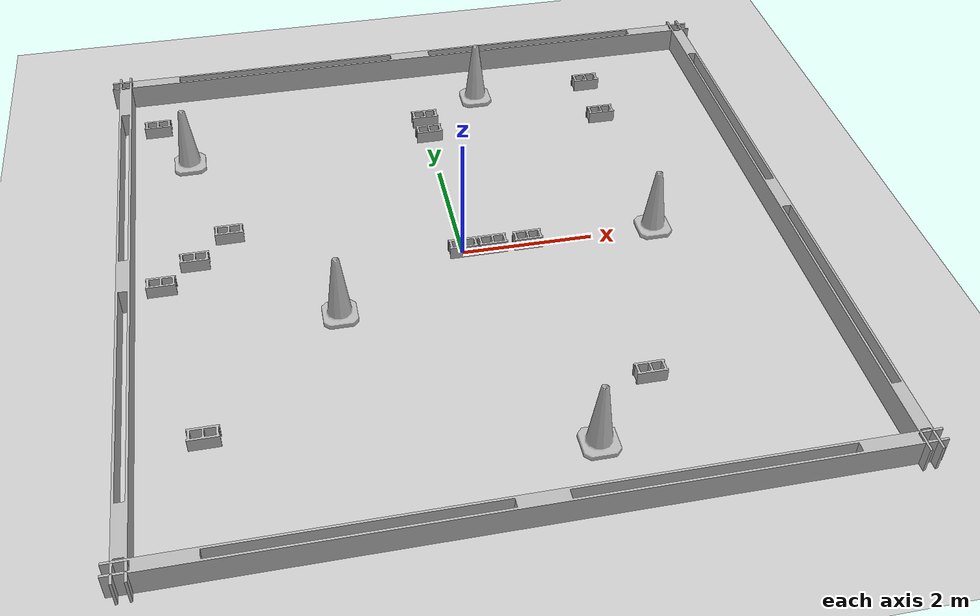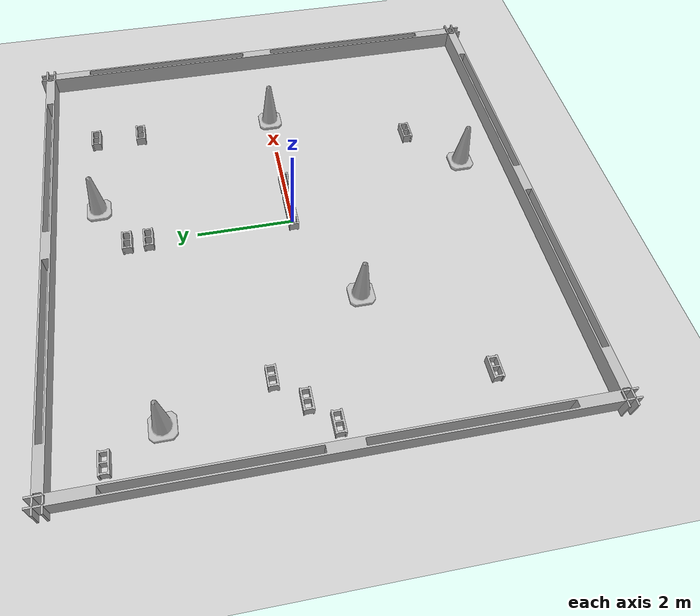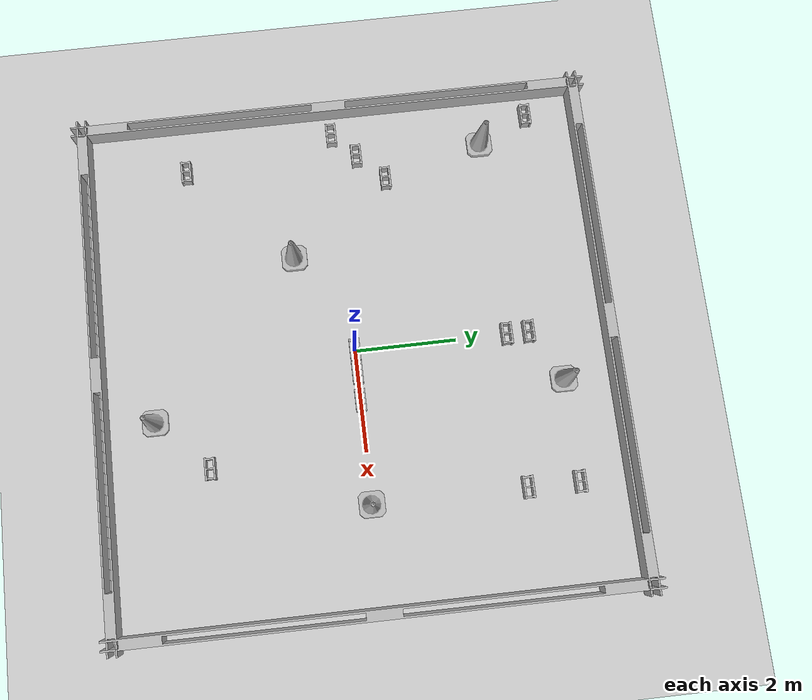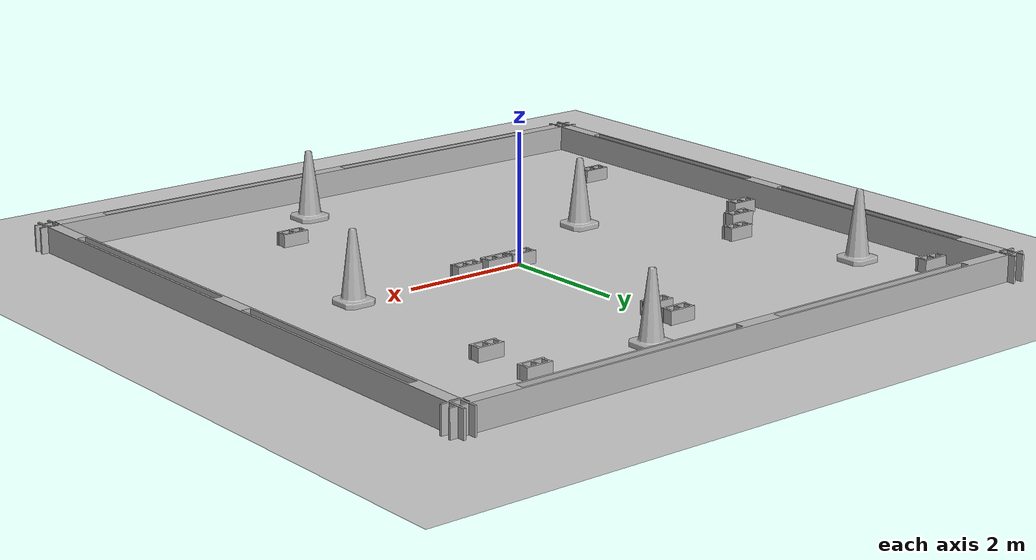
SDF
<sdf version="1.4">
 <world name="default">
  <light name="sun" type="directional">
   <pose>0 0 10 0 -0 0</pose>
   <diffuse>0.8 0.8 0.8 1</diffuse>
   <specular>0.2 0.2 0.2 1</specular>
   <attenuation>
    <range>1000</range>
    <constant>0.9</constant>
    <linear>0.01</linear>
    <quadratic>0.001</quadratic>
   </attenuation>
   <direction>-0.5 0.1 -0.9</direction>
  </light>
  <model name="ground_plane">
   <static>1</static>
   <link name="link">
    <collision name="collision">
     <geometry><plane><normal>0 0 1</normal><size>100 100</size></plane></geometry>
     <surface><friction><ode><mu>100</mu><mu2>50</mu2></ode></friction></surface>
    </collision>
    <visual name="visual">
     <cast_shadows>0</cast_shadows>
     <geometry><plane><normal>0 0 1</normal><size>100 100</size></plane></geometry>
     <material>
      <script><uri>file://media/materials/scripts/gazebo.material</uri><name>Gazebo/Grey</name></script>
     </material>
    </visual>
    <velocity_decay><linear>0</linear><angular>0</angular></velocity_decay>
   </link>
  </model>
  <physics type="ode">
   <max_step_size>0.001</max_step_size>
   <real_time_factor>1</real_time_factor>
   <real_time_update_rate>1000</real_time_update_rate>
   <gravity>0 0 -9.8</gravity>
  </physics>
  <scene><ambient>0.4 0.4 0.4 1</ambient><background>0.7 0.7 0.7 1</background><shadows>1</shadows></scene>
  <model name="cinder_block">
   <link name="link">
    <inertial>
     <pose>0 0 0.1016 0 -0 0</pose>
     <mass>5</mass>
     <inertia>
      <ixx>0.028705</ixx>
      <ixy>0</ixy>
      <iyy>0.073708</iyy>
      <ixz>0</ixz>
      <iyz>0</iyz>
      <izz>0.06908</izz>
     </inertia>
    </inertial>
    <visual name="visual">
     <geometry><mesh><uri>model://cinder_block/meshes/cinder_block.dae</uri></mesh></geometry>
    </visual>
    <collision name="left">
     <pose>0 -0.08465 0.1016 0 -0 0</pose>
     <geometry><box><size>0.43495 0.0339 0.2032</size></box></geometry>
     <surface><contact><ode><max_vel>0.1</max_vel><min_depth>0.001</min_depth></ode></contact></surface>
    </collision>
    <collision name="right">
     <pose>0 0.08465 0.1016 0 -0 0</pose>
     <geometry><box><size>0.43495 0.0339 0.2032</size></box></geometry>
     <surface><contact><ode><max_vel>0.1</max_vel><min_depth>0.001</min_depth></ode></contact></surface>
    </collision>
    <collision name="front">
     <pose>0.18625 0 0.1016 0 -0 0</pose>
     <geometry><box><size>0.0339 0.1354 0.203</size></box></geometry>
     <surface><contact><ode><max_vel>0.1</max_vel><min_depth>0.001</min_depth></ode></contact></surface>
    </collision>
    <collision name="middle">
     <pose>0 0 0.1016 0 -0 0</pose>
     <geometry><box><size>0.0339 0.1354 0.203</size></box></geometry>
     <surface><contact><ode><max_vel>0.1</max_vel><min_depth>0.001</min_depth></ode></contact></surface>
    </collision>
    <collision name="back">
     <pose>-0.18625 0 0.1016 0 -0 0</pose>
     <geometry><box><size>0.0339 0.1354 0.203</size></box></geometry>
     <surface><contact><ode><max_vel>0.1</max_vel><min_depth>0.001</min_depth></ode></contact></surface>
    </collision>
    <velocity_decay><linear>0</linear><angular>0</angular></velocity_decay>
   </link>
   <pose>0 -0 -1.2e-05 3e-06 -1e-06 4.03897e-28</pose>
   <static>0</static>
  </model>
  <model name="wall_0">
   <pose>0 -5 0 0 -0 0</pose>
   <static>1</static>
   <link name="link">
    <collision name="collision"><geometry><box><size>10 0.2 0.3</size></box></geometry></collision>
    <visual name="visual">
     <geometry><mesh><uri>model://cinder_block/meshes/cinder_block.dae</uri><scale>24 1 2</scale></mesh></geometry>
    </visual>
    <velocity_decay><linear>0</linear><angular>0</angular></velocity_decay>
   </link>
  </model>
  <model name="wall_1">
   <pose>0 5 0 0 -0 0</pose>
   <static>1</static>
   <link name="link">
    <collision name="collision"><geometry><box><size>10 0.2 0.3</size></box></geometry></collision>
    <visual name="visual">
     <geometry><mesh><uri>model://cinder_block/meshes/cinder_block.dae</uri><scale>24 1 2</scale></mesh></geometry>
    </visual>
    <velocity_decay><linear>0</linear><angular>0</angular></velocity_decay>
   </link>
  </model>
  <model name="wall_2">
   <pose>-5 0 0 0 -0 1.5708</pose>
   <static>1</static>
   <link name="link">
    <collision name="collision"><geometry><box><size>10 0.2 0.3</size></box></geometry></collision>
    <visual name="visual">
     <geometry><mesh><uri>model://cinder_block/meshes/cinder_block.dae</uri><scale>24 1 2</scale></mesh></geometry>
    </visual>
    <velocity_decay><linear>0</linear><angular>0</angular></velocity_decay>
   </link>
  </model>
  <model name="wall_3">
   <pose>5 0 0 0 -0 1.5708</pose>
   <static>1</static>
   <link name="link">
    <collision name="collision"><geometry><box><size>10 0.2 0.3</size></box></geometry></collision>
    <visual name="visual">
     <geometry><mesh><uri>model://cinder_block/meshes/cinder_block.dae</uri><scale>24 1 2</scale></mesh></geometry>
    </visual>
    <velocity_decay><linear>0</linear><angular>0</angular></velocity_decay>
   </link>
  </model>
  <model name="cinder_block_0">
   <link name="link">
    <inertial>
     <pose>0 0 0.1016 0 -0 0</pose>
     <mass>5</mass>
     <inertia>
      <ixx>0.028705</ixx>
      <ixy>0</ixy>
      <iyy>0.073708</iyy>
      <ixz>0</ixz>
      <iyz>0</iyz>
      <izz>0.06908</izz>
     </inertia>
    </inertial>
    <visual name="visual">
     <geometry><mesh><uri>model://cinder_block/meshes/cinder_block.dae</uri></mesh></geometry>
    </visual>
    <collision name="left">
     <pose>0 -0.08465 0.1016 0 -0 0</pose>
     <geometry><box><size>0.43495 0.0339 0.2032</size></box></geometry>
     <surface><contact><ode><max_vel>0.1</max_vel><min_depth>0.001</min_depth></ode></contact></surface>
    </collision>
    <collision name="right">
     <pose>0 0.08465 0.1016 0 -0 0</pose>
     <geometry><box><size>0.43495 0.0339 0.2032</size></box></geometry>
     <surface><contact><ode><max_vel>0.1</max_vel><min_depth>0.001</min_depth></ode></contact></surface>
    </collision>
    <collision name="front">
     <pose>0.18625 0 0.1016 0 -0 0</pose>
     <geometry><box><size>0.0339 0.1354 0.203</size></box></geometry>
     <surface><contact><ode><max_vel>0.1</max_vel><min_depth>0.001</min_depth></ode></contact></surface>
    </collision>
    <collision name="middle">
     <pose>0 0 0.1016 0 -0 0</pose>
     <geometry><box><size>0.0339 0.1354 0.203</size></box></geometry>
     <surface><contact><ode><max_vel>0.1</max_vel><min_depth>0.001</min_depth></ode></contact></surface>
    </collision>
    <collision name="back">
     <pose>-0.18625 0 0.1016 0 -0 0</pose>
     <geometry><box><size>0.0339 0.1354 0.203</size></box></geometry>
     <surface><contact><ode><max_vel>0.1</max_vel><min_depth>0.001</min_depth></ode></contact></surface>
    </collision>
    <velocity_decay><linear>0</linear><angular>0</angular></velocity_decay>
   </link>
   <pose>3 3 -6e-06 -1e-06 2.8e-05 0</pose>
   <static>0</static>
  </model>
  <model name="cinder_block_1">
   <link name="link">
    <inertial>
     <pose>0 0 0.1016 0 -0 0</pose>
     <mass>5</mass>
     <inertia>
      <ixx>0.028705</ixx>
      <ixy>0</ixy>
      <iyy>0.073708</iyy>
      <ixz>0</ixz>
      <iyz>0</iyz>
      <izz>0.06908</izz>
     </inertia>
    </inertial>
    <visual name="visual">
     <geometry><mesh><uri>model://cinder_block/meshes/cinder_block.dae</uri></mesh></geometry>
    </visual>
    <collision name="left">
     <pose>0 -0.08465 0.1016 0 -0 0</pose>
     <geometry><box><size>0.43495 0.0339 0.2032</size></box></geometry>
     <surface><contact><ode><max_vel>0.1</max_vel><min_depth>0.001</min_depth></ode></contact></surface>
    </collision>
    <collision name="right">
     <pose>0 0.08465 0.1016 0 -0 0</pose>
     <geometry><box><size>0.43495 0.0339 0.2032</size></box></geometry>
     <surface><contact><ode><max_vel>0.1</max_vel><min_depth>0.001</min_depth></ode></contact></surface>
    </collision>
    <collision name="front">
     <pose>0.18625 0 0.1016 0 -0 0</pose>
     <geometry><box><size>0.0339 0.1354 0.203</size></box></geometry>
     <surface><contact><ode><max_vel>0.1</max_vel><min_depth>0.001</min_depth></ode></contact></surface>
    </collision>
    <collision name="middle">
     <pose>0 0 0.1016 0 -0 0</pose>
     <geometry><box><size>0.0339 0.1354 0.203</size></box></geometry>
     <surface><contact><ode><max_vel>0.1</max_vel><min_depth>0.001</min_depth></ode></contact></surface>
    </collision>
    <collision name="back">
     <pose>-0.18625 0 0.1016 0 -0 0</pose>
     <geometry><box><size>0.0339 0.1354 0.203</size></box></geometry>
     <surface><contact><ode><max_vel>0.1</max_vel><min_depth>0.001</min_depth></ode></contact></surface>
    </collision>
    <velocity_decay><linear>0</linear><angular>0</angular></velocity_decay>
   </link>
   <pose>3 4 -6e-06 -1e-06 2.8e-05 0</pose>
   <static>0</static>
  </model>
  <model name="cinder_block_2">
   <link name="link">
    <inertial>
     <pose>0 0 0.1016 0 -0 0</pose>
     <mass>5</mass>
     <inertia>
      <ixx>0.028705</ixx>
      <ixy>0</ixy>
      <iyy>0.073708</iyy>
      <ixz>0</ixz>
      <iyz>0</iyz>
      <izz>0.06908</izz>
     </inertia>
    </inertial>
    <visual name="visual">
     <geometry><mesh><uri>model://cinder_block/meshes/cinder_block.dae</uri></mesh></geometry>
    </visual>
    <collision name="left">
     <pose>0 -0.08465 0.1016 0 -0 0</pose>
     <geometry><box><size>0.43495 0.0339 0.2032</size></box></geometry>
     <surface><contact><ode><max_vel>0.1</max_vel><min_depth>0.001</min_depth></ode></contact></surface>
    </collision>
    <collision name="right">
     <pose>0 0.08465 0.1016 0 -0 0</pose>
     <geometry><box><size>0.43495 0.0339 0.2032</size></box></geometry>
     <surface><contact><ode><max_vel>0.1</max_vel><min_depth>0.001</min_depth></ode></contact></surface>
    </collision>
    <collision name="front">
     <pose>0.18625 0 0.1016 0 -0 0</pose>
     <geometry><box><size>0.0339 0.1354 0.203</size></box></geometry>
     <surface><contact><ode><max_vel>0.1</max_vel><min_depth>0.001</min_depth></ode></contact></surface>
    </collision>
    <collision name="middle">
     <pose>0 0 0.1016 0 -0 0</pose>
     <geometry><box><size>0.0339 0.1354 0.203</size></box></geometry>
     <surface><contact><ode><max_vel>0.1</max_vel><min_depth>0.001</min_depth></ode></contact></surface>
    </collision>
    <collision name="back">
     <pose>-0.18625 0 0.1016 0 -0 0</pose>
     <geometry><box><size>0.0339 0.1354 0.203</size></box></geometry>
     <surface><contact><ode><max_vel>0.1</max_vel><min_depth>0.001</min_depth></ode></contact></surface>
    </collision>
    <velocity_decay><linear>0</linear><angular>0</angular></velocity_decay>
   </link>
   <pose>2 -3 -6e-06 -1e-06 2.8e-05 0</pose>
   <static>0</static>
  </model>
  <model name="cinder_block_3">
   <link name="link">
    <inertial>
     <pose>0 0 0.1016 0 -0 0</pose>
     <mass>5</mass>
     <inertia>
      <ixx>0.028705</ixx>
      <ixy>0</ixy>
      <iyy>0.073708</iyy>
      <ixz>0</ixz>
      <iyz>0</iyz>
      <izz>0.06908</izz>
     </inertia>
    </inertial>
    <visual name="visual">
     <geometry><mesh><uri>model://cinder_block/meshes/cinder_block.dae</uri></mesh></geometry>
    </visual>
    <collision name="left">
     <pose>0 -0.08465 0.1016 0 -0 0</pose>
     <geometry><box><size>0.43495 0.0339 0.2032</size></box></geometry>
     <surface><contact><ode><max_vel>0.1</max_vel><min_depth>0.001</min_depth></ode></contact></surface>
    </collision>
    <collision name="right">
     <pose>0 0.08465 0.1016 0 -0 0</pose>
     <geometry><box><size>0.43495 0.0339 0.2032</size></box></geometry>
     <surface><contact><ode><max_vel>0.1</max_vel><min_depth>0.001</min_depth></ode></contact></surface>
    </collision>
    <collision name="front">
     <pose>0.18625 0 0.1016 0 -0 0</pose>
     <geometry><box><size>0.0339 0.1354 0.203</size></box></geometry>
     <surface><contact><ode><max_vel>0.1</max_vel><min_depth>0.001</min_depth></ode></contact></surface>
    </collision>
    <collision name="middle">
     <pose>0 0 0.1016 0 -0 0</pose>
     <geometry><box><size>0.0339 0.1354 0.203</size></box></geometry>
     <surface><contact><ode><max_vel>0.1</max_vel><min_depth>0.001</min_depth></ode></contact></surface>
    </collision>
    <collision name="back">
     <pose>-0.18625 0 0.1016 0 -0 0</pose>
     <geometry><box><size>0.0339 0.1354 0.203</size></box></geometry>
     <surface><contact><ode><max_vel>0.1</max_vel><min_depth>0.001</min_depth></ode></contact></surface>
    </collision>
    <velocity_decay><linear>0</linear><angular>0</angular></velocity_decay>
   </link>
   <pose>-4.49454 4 -6e-06 -1e-06 2.8e-05 0</pose>
   <static>0</static>
  </model>
  <model name="Construction Cone">
   <link name="link">
    <collision name="collision">
     <geometry>
      <mesh><scale>10 10 10</scale><uri>model://construction_cone/meshes/construction_cone.dae</uri></mesh>
     </geometry>
    </collision>
    <visual name="visual">
     <geometry>
      <mesh><scale>10 10 10</scale><uri>model://construction_cone/meshes/construction_cone.dae</uri></mesh>
     </geometry>
    </visual>
    <velocity_decay><linear>0</linear><angular>0</angular></velocity_decay>
    <inertial>
     <inertia><ixx>1</ixx><ixy>0</ixy><ixz>0</ixz><iyy>1</iyy><iyz>0</iyz><izz>1</izz></inertia>
     <mass>1</mass>
    </inertial>
   </link>
   <pose>-4 3 -8e-06 0 -4e-06 0</pose>
   <static>0</static>
  </model>
  <model name="Construction Cone_0">
   <link name="link">
    <collision name="collision">
     <geometry>
      <mesh><scale>10 10 10</scale><uri>model://construction_cone/meshes/construction_cone.dae</uri></mesh>
     </geometry>
    </collision>
    <visual name="visual">
     <geometry>
      <mesh><scale>10 10 10</scale><uri>model://construction_cone/meshes/construction_cone.dae</uri></mesh>
     </geometry>
    </visual>
    <velocity_decay><linear>0</linear><angular>0</angular></velocity_decay>
    <inertial>
     <inertia><ixx>1</ixx><ixy>0</ixy><ixz>0</ixz><iyy>1</iyy><iyz>0</iyz><izz>1</izz></inertia>
     <mass>1</mass>
    </inertial>
   </link>
   <pose>3 -0 -9e-06 2e-06 -0 0</pose>
   <static>0</static>
  </model>
  <model name="Construction Cone_1">
   <link name="link">
    <collision name="collision">
     <geometry>
      <mesh><scale>10 10 10</scale><uri>model://construction_cone/meshes/construction_cone.dae</uri></mesh>
     </geometry>
    </collision>
    <visual name="visual">
     <geometry>
      <mesh><scale>10 10 10</scale><uri>model://construction_cone/meshes/construction_cone.dae</uri></mesh>
     </geometry>
    </visual>
    <velocity_decay><linear>0</linear><angular>0</angular></velocity_decay>
    <inertial>
     <inertia><ixx>1</ixx><ixy>0</ixy><ixz>0</ixz><iyy>1</iyy><iyz>0</iyz><izz>1</izz></inertia>
     <mass>1</mass>
    </inertial>
   </link>
   <pose>1 4 0 0 1e-06 0</pose>
   <static>0</static>
  </model>
  <model name="Construction Cone_2">
   <link name="link">
    <collision name="collision">
     <geometry>
      <mesh><scale>10 10 10</scale><uri>model://construction_cone/meshes/construction_cone.dae</uri></mesh>
     </geometry>
    </collision>
    <visual name="visual">
     <geometry>
      <mesh><scale>10 10 10</scale><uri>model://construction_cone/meshes/construction_cone.dae</uri></mesh>
     </geometry>
    </visual>
    <velocity_decay><linear>0</linear><angular>0</angular></velocity_decay>
    <inertial>
     <inertia><ixx>1</ixx><ixy>0</ixy><ixz>0</ixz><iyy>1</iyy><iyz>0</iyz><izz>1</izz></inertia>
     <mass>1</mass>
    </inertial>
   </link>
   <pose>-2 -1 0 1e-06 -0 0</pose>
   <static>0</static>
  </model>
  <model name="Construction Cone_3">
   <link name="link">
    <collision name="collision">
     <geometry>
      <mesh><scale>10 10 10</scale><uri>model://construction_cone/meshes/construction_cone.dae</uri></mesh>
     </geometry>
    </collision>
    <visual name="visual">
     <geometry>
      <mesh><scale>10 10 10</scale><uri>model://construction_cone/meshes/construction_cone.dae</uri></mesh>
     </geometry>
    </visual>
    <velocity_decay><linear>0</linear><angular>0</angular></velocity_decay>
    <inertial>
     <inertia><ixx>1</ixx><ixy>0</ixy><ixz>0</ixz><iyy>1</iyy><iyz>0</iyz><izz>1</izz></inertia>
     <mass>1</mass>
    </inertial>
   </link>
   <pose>1 -4 -0 -0 -0 -0</pose>
   <static>0</static>
  </model>
  <model name="cinder_block_4">
   <link name="link">
    <inertial>
     <pose>0 0 0.1016 0 -0 0</pose>
     <mass>5</mass>
     <inertia>
      <ixx>0.028705</ixx>
      <ixy>0</ixy>
      <iyy>0.073708</iyy>
      <ixz>0</ixz>
      <iyz>0</iyz>
      <izz>0.06908</izz>
     </inertia>
    </inertial>
    <visual name="visual">
     <geometry><mesh><uri>model://cinder_block/meshes/cinder_block.dae</uri></mesh></geometry>
    </visual>
    <collision name="left">
     <pose>0 -0.08465 0.1016 0 -0 0</pose>
     <geometry><box><size>0.43495 0.0339 0.2032</size></box></geometry>
     <surface><contact><ode><max_vel>0.1</max_vel><min_depth>0.001</min_depth></ode></contact></surface>
    </collision>
    <collision name="right">
     <pose>0 0.08465 0.1016 0 -0 0</pose>
     <geometry><box><size>0.43495 0.0339 0.2032</size></box></geometry>
     <surface><contact><ode><max_vel>0.1</max_vel><min_depth>0.001</min_depth></ode></contact></surface>
    </collision>
    <collision name="front">
     <pose>0.18625 0 0.1016 0 -0 0</pose>
     <geometry><box><size>0.0339 0.1354 0.203</size></box></geometry>
     <surface><contact><ode><max_vel>0.1</max_vel><min_depth>0.001</min_depth></ode></contact></surface>
    </collision>
    <collision name="middle">
     <pose>0 0 0.1016 0 -0 0</pose>
     <geometry><box><size>0.0339 0.1354 0.203</size></box></geometry>
     <surface><contact><ode><max_vel>0.1</max_vel><min_depth>0.001</min_depth></ode></contact></surface>
    </collision>
    <collision name="back">
     <pose>-0.18625 0 0.1016 0 -0 0</pose>
     <geometry><box><size>0.0339 0.1354 0.203</size></box></geometry>
     <surface><contact><ode><max_vel>0.1</max_vel><min_depth>0.001</min_depth></ode></contact></surface>
    </collision>
    <velocity_decay><linear>0</linear><angular>0</angular></velocity_decay>
   </link>
   <pose>0.453647 0 -6e-06 -1e-06 2.8e-05 0</pose>
   <static>0</static>
  </model>
  <model name="cinder_block_5">
   <link name="link">
    <inertial>
     <pose>0 0 0.1016 0 -0 0</pose>
     <mass>5</mass>
     <inertia>
      <ixx>0.028705</ixx>
      <ixy>0</ixy>
      <iyy>0.073708</iyy>
      <ixz>0</ixz>
      <iyz>0</iyz>
      <izz>0.06908</izz>
     </inertia>
    </inertial>
    <visual name="visual">
     <geometry><mesh><uri>model://cinder_block/meshes/cinder_block.dae</uri></mesh></geometry>
    </visual>
    <collision name="left">
     <pose>0 -0.08465 0.1016 0 -0 0</pose>
     <geometry><box><size>0.43495 0.0339 0.2032</size></box></geometry>
     <surface><contact><ode><max_vel>0.1</max_vel><min_depth>0.001</min_depth></ode></contact></surface>
    </collision>
    <collision name="right">
     <pose>0 0.08465 0.1016 0 -0 0</pose>
     <geometry><box><size>0.43495 0.0339 0.2032</size></box></geometry>
     <surface><contact><ode><max_vel>0.1</max_vel><min_depth>0.001</min_depth></ode></contact></surface>
    </collision>
    <collision name="front">
     <pose>0.18625 0 0.1016 0 -0 0</pose>
     <geometry><box><size>0.0339 0.1354 0.203</size></box></geometry>
     <surface><contact><ode><max_vel>0.1</max_vel><min_depth>0.001</min_depth></ode></contact></surface>
    </collision>
    <collision name="middle">
     <pose>0 0 0.1016 0 -0 0</pose>
     <geometry><box><size>0.0339 0.1354 0.203</size></box></geometry>
     <surface><contact><ode><max_vel>0.1</max_vel><min_depth>0.001</min_depth></ode></contact></surface>
    </collision>
    <collision name="back">
     <pose>-0.18625 0 0.1016 0 -0 0</pose>
     <geometry><box><size>0.0339 0.1354 0.203</size></box></geometry>
     <surface><contact><ode><max_vel>0.1</max_vel><min_depth>0.001</min_depth></ode></contact></surface>
    </collision>
    <velocity_decay><linear>0</linear><angular>0</angular></velocity_decay>
   </link>
   <pose>1 0 -6e-06 -1e-06 2.8e-05 0</pose>
   <static>0</static>
  </model>
  <model name="cinder_block_6">
   <link name="link">
    <inertial>
     <pose>0 0 0.1016 0 -0 0</pose>
     <mass>5</mass>
     <inertia>
      <ixx>0.028705</ixx>
      <ixy>0</ixy>
      <iyy>0.073708</iyy>
      <ixz>0</ixz>
      <iyz>0</iyz>
      <izz>0.06908</izz>
     </inertia>
    </inertial>
    <visual name="visual">
     <geometry><mesh><uri>model://cinder_block/meshes/cinder_block.dae</uri></mesh></geometry>
    </visual>
    <collision name="left">
     <pose>0 -0.08465 0.1016 0 -0 0</pose>
     <geometry><box><size>0.43495 0.0339 0.2032</size></box></geometry>
     <surface><contact><ode><max_vel>0.1</max_vel><min_depth>0.001</min_depth></ode></contact></surface>
    </collision>
    <collision name="right">
     <pose>0 0.08465 0.1016 0 -0 0</pose>
     <geometry><box><size>0.43495 0.0339 0.2032</size></box></geometry>
     <surface><contact><ode><max_vel>0.1</max_vel><min_depth>0.001</min_depth></ode></contact></surface>
    </collision>
    <collision name="front">
     <pose>0.18625 0 0.1016 0 -0 0</pose>
     <geometry><box><size>0.0339 0.1354 0.203</size></box></geometry>
     <surface><contact><ode><max_vel>0.1</max_vel><min_depth>0.001</min_depth></ode></contact></surface>
    </collision>
    <collision name="middle">
     <pose>0 0 0.1016 0 -0 0</pose>
     <geometry><box><size>0.0339 0.1354 0.203</size></box></geometry>
     <surface><contact><ode><max_vel>0.1</max_vel><min_depth>0.001</min_depth></ode></contact></surface>
    </collision>
    <collision name="back">
     <pose>-0.18625 0 0.1016 0 -0 0</pose>
     <geometry><box><size>0.0339 0.1354 0.203</size></box></geometry>
     <surface><contact><ode><max_vel>0.1</max_vel><min_depth>0.001</min_depth></ode></contact></surface>
    </collision>
    <velocity_decay><linear>0</linear><angular>0</angular></velocity_decay>
   </link>
   <pose>-0 3 -6e-06 -1e-06 2.8e-05 0</pose>
   <static>0</static>
  </model>
  <model name="cinder_block_7">
   <link name="link">
    <inertial>
     <pose>0 0 0.1016 0 -0 0</pose>
     <mass>5</mass>
     <inertia>
      <ixx>0.028705</ixx>
      <ixy>0</ixy>
      <iyy>0.073708</iyy>
      <ixz>0</ixz>
      <iyz>0</iyz>
      <izz>0.06908</izz>
     </inertia>
    </inertial>
    <visual name="visual">
     <geometry><mesh><uri>model://cinder_block/meshes/cinder_block.dae</uri></mesh></geometry>
    </visual>
    <collision name="left">
     <pose>0 -0.08465 0.1016 0 -0 0</pose>
     <geometry><box><size>0.43495 0.0339 0.2032</size></box></geometry>
     <surface><contact><ode><max_vel>0.1</max_vel><min_depth>0.001</min_depth></ode></contact></surface>
    </collision>
    <collision name="right">
     <pose>0 0.08465 0.1016 0 -0 0</pose>
     <geometry><box><size>0.43495 0.0339 0.2032</size></box></geometry>
     <surface><contact><ode><max_vel>0.1</max_vel><min_depth>0.001</min_depth></ode></contact></surface>
    </collision>
    <collision name="front">
     <pose>0.18625 0 0.1016 0 -0 0</pose>
     <geometry><box><size>0.0339 0.1354 0.203</size></box></geometry>
     <surface><contact><ode><max_vel>0.1</max_vel><min_depth>0.001</min_depth></ode></contact></surface>
    </collision>
    <collision name="middle">
     <pose>0 0 0.1016 0 -0 0</pose>
     <geometry><box><size>0.0339 0.1354 0.203</size></box></geometry>
     <surface><contact><ode><max_vel>0.1</max_vel><min_depth>0.001</min_depth></ode></contact></surface>
    </collision>
    <collision name="back">
     <pose>-0.18625 0 0.1016 0 -0 0</pose>
     <geometry><box><size>0.0339 0.1354 0.203</size></box></geometry>
     <surface><contact><ode><max_vel>0.1</max_vel><min_depth>0.001</min_depth></ode></contact></surface>
    </collision>
    <velocity_decay><linear>0</linear><angular>0</angular></velocity_decay>
   </link>
   <pose>-0 3.43524 -6e-06 -1e-06 2.8e-05 0</pose>
   <static>0</static>
  </model>
  <model name="cinder_block_8">
   <link name="link">
    <inertial>
     <pose>0 0 0.1016 0 -0 0</pose>
     <mass>5</mass>
     <inertia>
      <ixx>0.028705</ixx>
      <ixy>0</ixy>
      <iyy>0.073708</iyy>
      <ixz>0</ixz>
      <iyz>0</iyz>
      <izz>0.06908</izz>
     </inertia>
    </inertial>
    <visual name="visual">
     <geometry><mesh><uri>model://cinder_block/meshes/cinder_block.dae</uri></mesh></geometry>
    </visual>
    <collision name="left">
     <pose>0 -0.08465 0.1016 0 -0 0</pose>
     <geometry><box><size>0.43495 0.0339 0.2032</size></box></geometry>
     <surface><contact><ode><max_vel>0.1</max_vel><min_depth>0.001</min_depth></ode></contact></surface>
    </collision>
    <collision name="right">
     <pose>0 0.08465 0.1016 0 -0 0</pose>
     <geometry><box><size>0.43495 0.0339 0.2032</size></box></geometry>
     <surface><contact><ode><max_vel>0.1</max_vel><min_depth>0.001</min_depth></ode></contact></surface>
    </collision>
    <collision name="front">
     <pose>0.18625 0 0.1016 0 -0 0</pose>
     <geometry><box><size>0.0339 0.1354 0.203</size></box></geometry>
     <surface><contact><ode><max_vel>0.1</max_vel><min_depth>0.001</min_depth></ode></contact></surface>
    </collision>
    <collision name="middle">
     <pose>0 0 0.1016 0 -0 0</pose>
     <geometry><box><size>0.0339 0.1354 0.203</size></box></geometry>
     <surface><contact><ode><max_vel>0.1</max_vel><min_depth>0.001</min_depth></ode></contact></surface>
    </collision>
    <collision name="back">
     <pose>-0.18625 0 0.1016 0 -0 0</pose>
     <geometry><box><size>0.0339 0.1354 0.203</size></box></geometry>
     <surface><contact><ode><max_vel>0.1</max_vel><min_depth>0.001</min_depth></ode></contact></surface>
    </collision>
    <velocity_decay><linear>0</linear><angular>0</angular></velocity_decay>
   </link>
   <pose>-4.49907 0 -6e-06 -1e-06 2.8e-05 0</pose>
   <static>0</static>
  </model>
  <model name="cinder_block_9">
   <link name="link">
    <inertial>
     <pose>0 0 0.1016 0 -0 0</pose>
     <mass>5</mass>
     <inertia>
      <ixx>0.028705</ixx>
      <ixy>0</ixy>
      <iyy>0.073708</iyy>
      <ixz>0</ixz>
      <iyz>0</iyz>
      <izz>0.06908</izz>
     </inertia>
    </inertial>
    <visual name="visual">
     <geometry><mesh><uri>model://cinder_block/meshes/cinder_block.dae</uri></mesh></geometry>
    </visual>
    <collision name="left">
     <pose>0 -0.08465 0.1016 0 -0 0</pose>
     <geometry><box><size>0.43495 0.0339 0.2032</size></box></geometry>
     <surface><contact><ode><max_vel>0.1</max_vel><min_depth>0.001</min_depth></ode></contact></surface>
    </collision>
    <collision name="right">
     <pose>0 0.08465 0.1016 0 -0 0</pose>
     <geometry><box><size>0.43495 0.0339 0.2032</size></box></geometry>
     <surface><contact><ode><max_vel>0.1</max_vel><min_depth>0.001</min_depth></ode></contact></surface>
    </collision>
    <collision name="front">
     <pose>0.18625 0 0.1016 0 -0 0</pose>
     <geometry><box><size>0.0339 0.1354 0.203</size></box></geometry>
     <surface><contact><ode><max_vel>0.1</max_vel><min_depth>0.001</min_depth></ode></contact></surface>
    </collision>
    <collision name="middle">
     <pose>0 0 0.1016 0 -0 0</pose>
     <geometry><box><size>0.0339 0.1354 0.203</size></box></geometry>
     <surface><contact><ode><max_vel>0.1</max_vel><min_depth>0.001</min_depth></ode></contact></surface>
    </collision>
    <collision name="back">
     <pose>-0.18625 0 0.1016 0 -0 0</pose>
     <geometry><box><size>0.0339 0.1354 0.203</size></box></geometry>
     <surface><contact><ode><max_vel>0.1</max_vel><min_depth>0.001</min_depth></ode></contact></surface>
    </collision>
    <velocity_decay><linear>0</linear><angular>0</angular></velocity_decay>
   </link>
   <pose>-4 0.462326 -6e-06 0 2.8e-05 0</pose>
   <static>0</static>
  </model>
  <model name="cinder_block_10">
   <link name="link">
    <inertial>
     <pose>0 0 0.1016 0 -0 0</pose>
     <mass>5</mass>
     <inertia>
      <ixx>0.028705</ixx>
      <ixy>0</ixy>
      <iyy>0.073708</iyy>
      <ixz>0</ixz>
      <iyz>0</iyz>
      <izz>0.06908</izz>
     </inertia>
    </inertial>
    <visual name="visual">
     <geometry><mesh><uri>model://cinder_block/meshes/cinder_block.dae</uri></mesh></geometry>
    </visual>
    <collision name="left">
     <pose>0 -0.08465 0.1016 0 -0 0</pose>
     <geometry><box><size>0.43495 0.0339 0.2032</size></box></geometry>
     <surface><contact><ode><max_vel>0.1</max_vel><min_depth>0.001</min_depth></ode></contact></surface>
    </collision>
    <collision name="right">
     <pose>0 0.08465 0.1016 0 -0 0</pose>
     <geometry><box><size>0.43495 0.0339 0.2032</size></box></geometry>
     <surface><contact><ode><max_vel>0.1</max_vel><min_depth>0.001</min_depth></ode></contact></surface>
    </collision>
    <collision name="front">
     <pose>0.18625 0 0.1016 0 -0 0</pose>
     <geometry><box><size>0.0339 0.1354 0.203</size></box></geometry>
     <surface><contact><ode><max_vel>0.1</max_vel><min_depth>0.001</min_depth></ode></contact></surface>
    </collision>
    <collision name="middle">
     <pose>0 0 0.1016 0 -0 0</pose>
     <geometry><box><size>0.0339 0.1354 0.203</size></box></geometry>
     <surface><contact><ode><max_vel>0.1</max_vel><min_depth>0.001</min_depth></ode></contact></surface>
    </collision>
    <collision name="back">
     <pose>-0.18625 0 0.1016 0 -0 0</pose>
     <geometry><box><size>0.0339 0.1354 0.203</size></box></geometry>
     <surface><contact><ode><max_vel>0.1</max_vel><min_depth>0.001</min_depth></ode></contact></surface>
    </collision>
    <velocity_decay><linear>0</linear><angular>0</angular></velocity_decay>
   </link>
   <pose>-3.46145 1 -6e-06 0 2.8e-05 0</pose>
   <static>0</static>
  </model>
  <model name="cinder_block_11">
   <link name="link">
    <inertial>
     <pose>0 0 0.1016 0 -0 0</pose>
     <mass>5</mass>
     <inertia>
      <ixx>0.028705</ixx>
      <ixy>0</ixy>
      <iyy>0.073708</iyy>
      <ixz>0</ixz>
      <iyz>0</iyz>
      <izz>0.06908</izz>
     </inertia>
    </inertial>
    <visual name="visual">
     <geometry><mesh><uri>model://cinder_block/meshes/cinder_block.dae</uri></mesh></geometry>
    </visual>
    <collision name="left">
     <pose>0 -0.08465 0.1016 0 -0 0</pose>
     <geometry><box><size>0.43495 0.0339 0.2032</size></box></geometry>
     <surface><contact><ode><max_vel>0.1</max_vel><min_depth>0.001</min_depth></ode></contact></surface>
    </collision>
    <collision name="right">
     <pose>0 0.08465 0.1016 0 -0 0</pose>
     <geometry><box><size>0.43495 0.0339 0.2032</size></box></geometry>
     <surface><contact><ode><max_vel>0.1</max_vel><min_depth>0.001</min_depth></ode></contact></surface>
    </collision>
    <collision name="front">
     <pose>0.18625 0 0.1016 0 -0 0</pose>
     <geometry><box><size>0.0339 0.1354 0.203</size></box></geometry>
     <surface><contact><ode><max_vel>0.1</max_vel><min_depth>0.001</min_depth></ode></contact></surface>
    </collision>
    <collision name="middle">
     <pose>0 0 0.1016 0 -0 0</pose>
     <geometry><box><size>0.0339 0.1354 0.203</size></box></geometry>
     <surface><contact><ode><max_vel>0.1</max_vel><min_depth>0.001</min_depth></ode></contact></surface>
    </collision>
    <collision name="back">
     <pose>-0.18625 0 0.1016 0 -0 0</pose>
     <geometry><box><size>0.0339 0.1354 0.203</size></box></geometry>
     <surface><contact><ode><max_vel>0.1</max_vel><min_depth>0.001</min_depth></ode></contact></surface>
    </collision>
    <velocity_decay><linear>0</linear><angular>0</angular></velocity_decay>
   </link>
   <pose>-4 -3 -6e-06 0 2.8e-05 0</pose>
   <static>0</static>
  </model>
  <model name="coke_can">
   <link name="link">
    <inertial>
     <pose>-0.01 -0.012 0.15 0 -0 0</pose>
     <mass>0.39</mass>
     <inertia><ixx>0.00058</ixx><ixy>0</ixy><ixz>0</ixz><iyy>0.00058</iyy><iyz>0</iyz><izz>0.00019</izz></inertia>
    </inertial>
    <collision name="collision">
     <pose>0 0 -0.46 0 -0 0</pose>
     <geometry><mesh><uri>model://coke_can/meshes/coke_can.dae</uri></mesh></geometry>
     <surface>
      <friction><ode><mu>1</mu><mu2>1</mu2></ode></friction>
      <contact><ode><kp>1e+07</kp><kd>1</kd><min_depth>0.001</min_depth><max_vel>0.1</max_vel></ode></contact>
     </surface>
    </collision>
    <visual name="visual">
     <pose>0 0 -0.46 0 -0 0</pose>
     <geometry><mesh><uri>model://coke_can/meshes/coke_can.dae</uri></mesh></geometry>
    </visual>
    <velocity_decay><linear>0</linear><angular>0</angular></velocity_decay>
   </link>
   <pose>-1e-05 -1.00008 -0.004096 -0.020949 0.002891 0.000116</pose>
   <static>0</static>
  </model>
  <model name="coke_can_0">
   <link name="link">
    <inertial>
     <pose>-0.01 -0.012 0.15 0 -0 0</pose>
     <mass>0.39</mass>
     <inertia><ixx>0.00058</ixx><ixy>0</ixy><ixz>0</ixz><iyy>0.00058</iyy><iyz>0</iyz><izz>0.00019</izz></inertia>
    </inertial>
    <collision name="collision">
     <pose>0 0 -0.46 0 -0 0</pose>
     <geometry><mesh><uri>model://coke_can/meshes/coke_can.dae</uri></mesh></geometry>
     <surface>
      <friction><ode><mu>1</mu><mu2>1</mu2></ode></friction>
      <contact><ode><kp>1e+07</kp><kd>1</kd><min_depth>0.001</min_depth><max_vel>0.1</max_vel></ode></contact>
     </surface>
    </collision>
    <visual name="visual">
     <pose>0 0 -0.46 0 -0 0</pose>
     <geometry><mesh><uri>model://coke_can/meshes/coke_can.dae</uri></mesh></geometry>
    </visual>
    <velocity_decay><linear>0</linear><angular>0</angular></velocity_decay>
   </link>
   <pose>-2.00001 0.999944 -0.003988 -0.01578 0.003494 0.000221</pose>
   <static>0</static>
  </model>
 </world>
</sdf>
